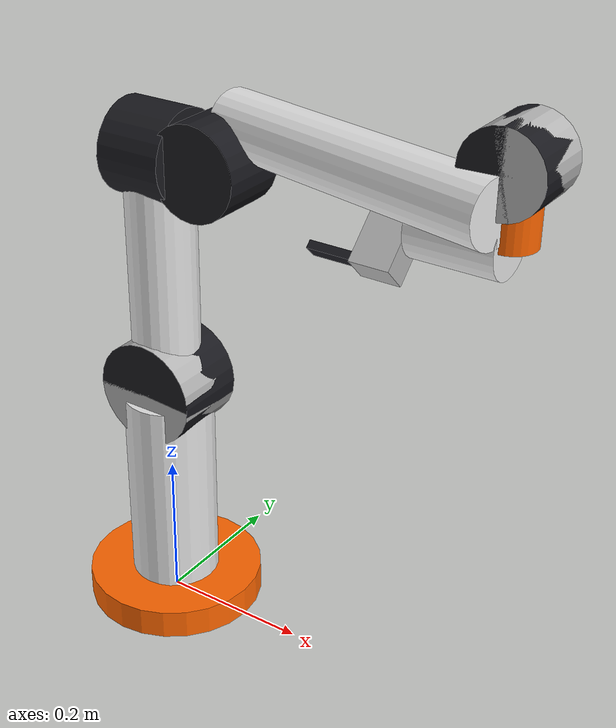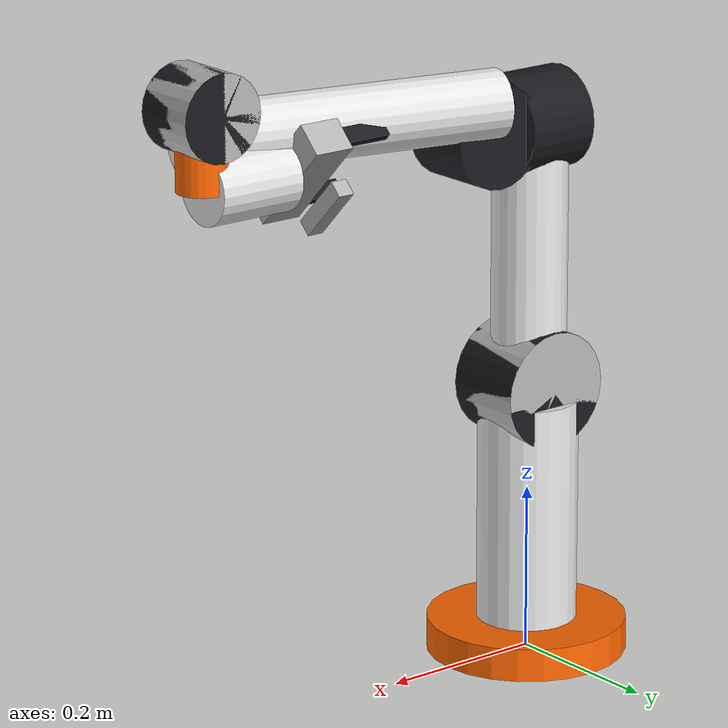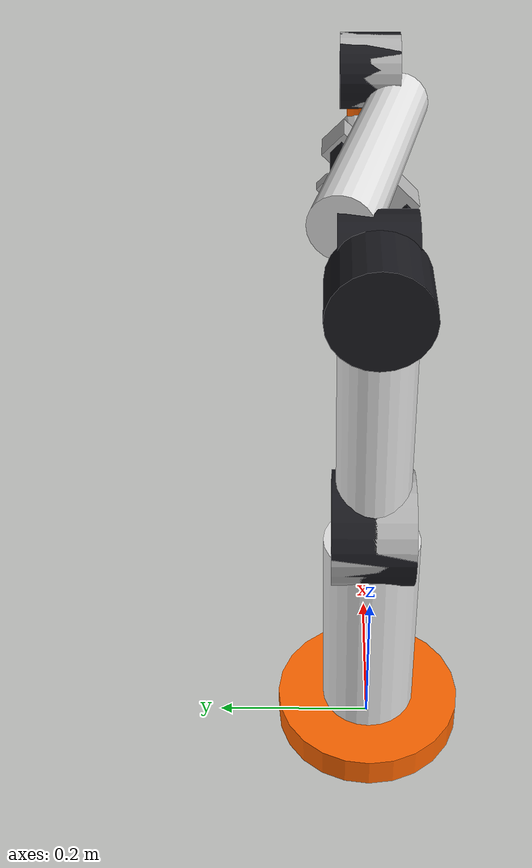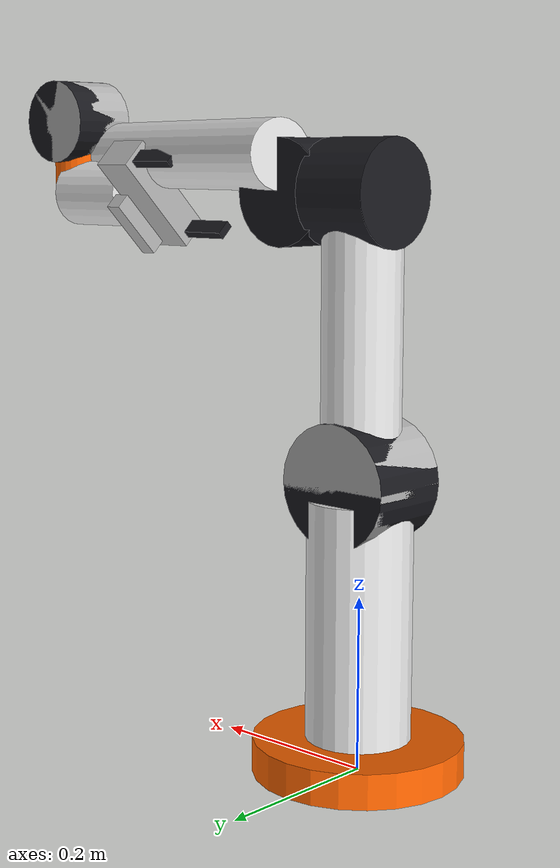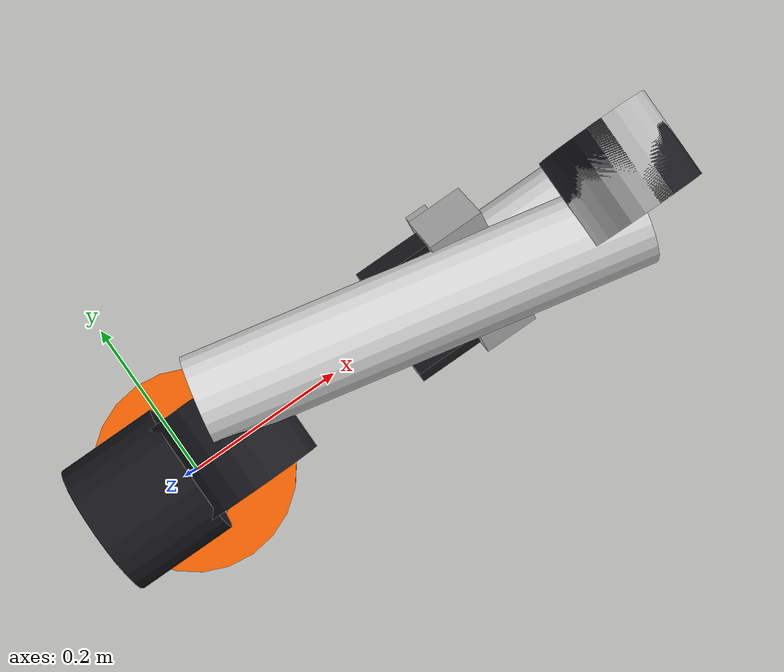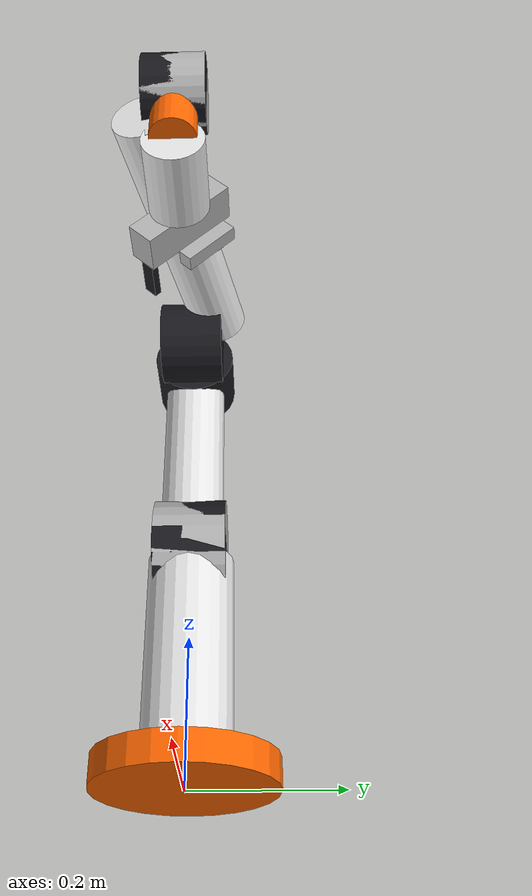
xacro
<?xml version="1.0"?>
<robot name="seven_dof_arm" xmlns:xacro="http://www.ros.org/wiki/xacro">
  <xacro:arg name="controllers_yaml" default=""/>

  <!-- High-end Commercial Robotics Palette -->
  <material name="industrial_black"><color rgba="0.1 0.1 0.12 1.0"/></material>
  <material name="matte_white"><color rgba="0.9 0.9 0.9 1.0"/></material>
  <material name="anodized_aluminum"><color rgba="0.7 0.7 0.7 1.0"/></material>
  <material name="safety_orange"><color rgba="1.0 0.4 0.0 1.0"/></material>

  <xacro:macro name="cylinder_inertia" params="mass r l">
    <inertial>
      <mass value="${mass}"/>
      <inertia ixx="${mass*(3*r*r + l*l)/12}" ixy="0" ixz="0" iyy="${mass*(3*r*r + l*l)/12}" iyz="0" izz="${mass*r*r/2}"/>
    </inertial>
  </xacro:macro>

  <xacro:macro name="box_inertia" params="mass x y z">
    <inertial>
      <mass value="${mass}"/>
      <inertia ixx="${mass*(y*y + z*z)/12}" ixy="0" ixz="0" iyy="${mass*(x*x + z*z)/12}" iyz="0" izz="${mass*(x*x + y*y)/12}"/>
    </inertial>
  </xacro:macro>

  <xacro:macro name="sphere_inertia" params="mass r">
    <inertial>
      <mass value="${mass}"/>
      <inertia ixx="${2*mass*r*r/5}" ixy="0" ixz="0" iyy="${2*mass*r*r/5}" iyz="0" izz="${2*mass*r*r/5}"/>
    </inertial>
  </xacro:macro>

  <link name="world"/>
  <joint name="world_to_base" type="fixed">
    <parent link="world"/>
    <child link="base_link"/>
    <origin xyz="0 0 0" rpy="0 0 0"/>
  </joint>

  <!-- Base Link: Z=0 to Z=0.333 -->
  <link name="base_link">
    <!-- Pedestal base -->
    <visual><origin xyz="0 0 0.02" rpy="0 0 0"/><geometry><cylinder radius="0.12" length="0.04"/></geometry><material name="safety_orange"/></visual>
    <collision><origin xyz="0 0 0.02" rpy="0 0 0"/><geometry><cylinder radius="0.12" length="0.04"/></geometry></collision>
    <!-- Tower -->
    <visual><origin xyz="0 0 0.1765" rpy="0 0 0"/><geometry><cylinder radius="0.06" length="0.273"/></geometry><material name="matte_white"/></visual>
    <collision><origin xyz="0 0 0.1765" rpy="0 0 0"/><geometry><cylinder radius="0.06" length="0.273"/></geometry></collision>
    <xacro:cylinder_inertia mass="4.0" r="0.06" l="0.333"/>
  </link>

  <joint name="joint_1" type="revolute">
    <origin rpy="0 0 0" xyz="0 0 0.333" />
    <parent link="base_link" />
    <child link="link_1" />
    <axis xyz="0 0 1" />
    <limit effort="87" lower="-2.8973" upper="2.8973" velocity="2.1750" />
    <dynamics damping="1.0" friction="0.5"/>
  </joint>

  <!-- Link 1: Motor joint -->
  <link name="link_1">
    <visual><origin xyz="0 0 0" rpy="1.5708 0 0"/><geometry><cylinder radius="0.07" length="0.1"/></geometry><material name="industrial_black"/></visual>
    <collision><origin xyz="0 0 0" rpy="1.5708 0 0"/><geometry><cylinder radius="0.07" length="0.1"/></geometry></collision>
    <xacro:sphere_inertia mass="2.0" r="0.07"/>
  </link>

  <joint name="joint_2" type="revolute">
    <origin rpy="-1.57079632679 0 0" xyz="0 0 0" />
    <parent link="link_1" />
    <child link="link_2" />
    <axis xyz="0 0 1" />
    <limit effort="87" lower="-1.7628" upper="1.7628" velocity="2.1750" />
    <dynamics damping="1.0" friction="0.5"/>
  </joint>

  <!-- Link 2: Arm reaching to -0.316 in Y -->
  <link name="link_2">
    <!-- Motor housing -->
    <visual><origin xyz="0 0 0" rpy="0 0 0"/><geometry><cylinder radius="0.07" length="0.1"/></geometry><material name="anodized_aluminum"/></visual>
    <!-- Arm segment -->
    <visual><origin xyz="0 -0.158 0" rpy="1.5708 0 0"/><geometry><cylinder radius="0.045" length="0.28"/></geometry><material name="matte_white"/></visual>
    <collision><origin xyz="0 -0.158 0" rpy="1.5708 0 0"/><geometry><cylinder radius="0.045" length="0.316"/></geometry></collision>
    <xacro:cylinder_inertia mass="2.5" r="0.045" l="0.316"/>
  </link>

  <joint name="joint_3" type="revolute">
    <origin rpy="1.57079632679 0 0" xyz="0 -0.316 0" />
    <parent link="link_2" />
    <child link="link_3" />
    <axis xyz="0 0 1" />
    <limit effort="87" lower="-2.8973" upper="2.8973" velocity="2.1750" />
    <dynamics damping="1.0" friction="0.5"/>
  </joint>

  <!-- Link 3: Offset to 0.0825 X -->
  <link name="link_3">
    <visual><origin xyz="0 0 0" rpy="0 1.5708 0"/><geometry><cylinder radius="0.06" length="0.09"/></geometry><material name="industrial_black"/></visual>
    <visual><origin xyz="0.04125 0 0" rpy="0 1.5708 0"/><geometry><cylinder radius="0.045" length="0.0825"/></geometry><material name="anodized_aluminum"/></visual>
    <collision><origin xyz="0.04125 0 0" rpy="0 1.5708 0"/><geometry><cylinder radius="0.045" length="0.0825"/></geometry></collision>
    <xacro:sphere_inertia mass="1.5" r="0.06"/>
  </link>

  <joint name="joint_4" type="revolute">
    <origin rpy="1.57079632679 0 0" xyz="0.0825 0 0" />
    <parent link="link_3" />
    <child link="link_4" />
    <axis xyz="0 0 1" />
    <limit effort="87" lower="-3.0718" upper="-0.0698" velocity="2.1750" />
    <dynamics damping="1.0" friction="0.5"/>
  </joint>

  <!-- Link 4: Arm reaching to X=-0.0825, Y=0.384 -->
  <link name="link_4">
    <!-- Motor housing -->
    <visual><origin xyz="0 0 0" rpy="0 0 0"/><geometry><cylinder radius="0.06" length="0.09"/></geometry><material name="industrial_black"/></visual>
    <!-- Arm segment -->
    <visual><origin xyz="-0.04125 0.192 0" rpy="1.78 0 0"/><geometry><cylinder radius="0.04" length="0.39"/></geometry><material name="matte_white"/></visual>
    <collision><origin xyz="-0.04125 0.192 0" rpy="1.78 0 0"/><geometry><cylinder radius="0.04" length="0.39"/></geometry></collision>
    <xacro:cylinder_inertia mass="2.0" r="0.04" l="0.384"/>
  </link>

  <joint name="joint_5" type="revolute">
    <origin rpy="-1.57079632679 0 0" xyz="-0.0825 0.384 0" />
    <parent link="link_4" />
    <child link="link_5" />
    <axis xyz="0 0 1" />
    <limit effort="12" lower="-2.8973" upper="2.8973" velocity="2.6100" />
    <dynamics damping="1.0" friction="0.5"/>
  </joint>

  <!-- Link 5: Motor joint -->
  <link name="link_5">
    <visual><origin xyz="0 0 0" rpy="1.5708 0 0"/><geometry><cylinder radius="0.05" length="0.08"/></geometry><material name="anodized_aluminum"/></visual>
    <collision><origin xyz="0 0 0" rpy="1.5708 0 0"/><geometry><cylinder radius="0.05" length="0.08"/></geometry></collision>
    <xacro:sphere_inertia mass="1.2" r="0.05"/>
  </link>

  <joint name="joint_6" type="revolute">
    <origin rpy="1.57079632679 0 0" xyz="0 0 0" />
    <parent link="link_5" />
    <child link="link_6" />
    <axis xyz="0 0 1" />
    <limit effort="12" lower="-0.0175" upper="3.7525" velocity="2.6100" />
    <dynamics damping="1.0" friction="0.5"/>
  </joint>

  <!-- Link 6: Offset to X=0.088 -->
  <link name="link_6">
    <visual><origin xyz="0 0 0" rpy="0 0 0"/><geometry><cylinder radius="0.05" length="0.08"/></geometry><material name="industrial_black"/></visual>
    <visual><origin xyz="0.044 0 0" rpy="0 1.5708 0"/><geometry><cylinder radius="0.03" length="0.088"/></geometry><material name="safety_orange"/></visual>
    <collision><origin xyz="0.044 0 0" rpy="0 1.5708 0"/><geometry><cylinder radius="0.03" length="0.088"/></geometry></collision>
    <xacro:cylinder_inertia mass="0.8" r="0.03" l="0.088"/>
  </link>

  <joint name="joint_7" type="revolute">
    <origin rpy="1.57079632679 0 0" xyz="0.088 0 0" />
    <parent link="link_6" />
    <child link="link_7" />
    <axis xyz="0 0 1" />
    <limit effort="12" lower="-2.8973" upper="2.8973" velocity="2.6100" />
    <dynamics damping="1.0" friction="0.5"/>
  </joint>

  <!-- Link 7: Flange adapter -->
  <link name="link_7">
    <visual><origin xyz="0 0 0.0535" rpy="0 0 0"/><geometry><cylinder radius="0.04" length="0.107"/></geometry><material name="matte_white"/></visual>
    <collision><origin xyz="0 0 0.0535" rpy="0 0 0"/><geometry><cylinder radius="0.04" length="0.107"/></geometry></collision>
    <xacro:cylinder_inertia mass="0.5" r="0.04" l="0.107"/>
  </link>

  <joint name="flange_joint" type="fixed">
    <origin rpy="0 0 0" xyz="0 0 0.107" />
    <parent link="link_7" />
    <child link="flange" />
  </joint>
  <link name="flange" />

  <!-- Gripper -->
  <joint name="gripper_base_joint" type="fixed">
    <parent link="flange" />
    <child link="gripper_base" />
    <origin rpy="0 0 -0.785398163397" xyz="0 0 0" />
  </joint>

  <link name="gripper_base">
    <visual><origin xyz="0 0 0.025" rpy="0 0 0"/><geometry><box size="0.04 0.14 0.05"/></geometry><material name="anodized_aluminum"/></visual>
    <collision><origin xyz="0 0 0.025" rpy="0 0 0"/><geometry><box size="0.04 0.14 0.05"/></geometry></collision>
    <xacro:box_inertia mass="0.4" x="0.04" y="0.14" z="0.05"/>
  </link>

  <joint name="gripper_left_joint" type="prismatic">
    <parent link="gripper_base" />
    <child link="gripper_left_finger" />
    <origin rpy="0 0 0" xyz="0 0.06 0.05" />
    <axis xyz="0 -1 0" />
    <limit effort="20" lower="0.0" upper="0.05" velocity="0.2" />
    <dynamics damping="1.0" friction="0.5"/>
  </joint>

  <link name="gripper_left_finger">
    <visual><origin xyz="0 0 0.03" rpy="0 0 0"/><geometry><box size="0.02 0.01 0.06"/></geometry><material name="industrial_black"/></visual>
    <collision><origin xyz="0 0 0.03" rpy="0 0 0"/><geometry><box size="0.02 0.01 0.06"/></geometry></collision>
    <xacro:box_inertia mass="0.5" x="0.1" y="0.1" z="0.1"/>
  </link>

  <joint name="gripper_right_joint" type="prismatic">
    <parent link="gripper_base" />
    <child link="gripper_right_finger" />
    <origin rpy="0 0 0" xyz="0 -0.06 0.05" />
    <axis xyz="0 1 0" />
    <limit effort="20" lower="0.0" upper="0.05" velocity="0.2" />
    <dynamics damping="1.0" friction="0.5"/>
  </joint>

  <link name="gripper_right_finger">
    <visual><origin xyz="0 0 0.03" rpy="0 0 0"/><geometry><box size="0.02 0.01 0.06"/></geometry><material name="industrial_black"/></visual>
    <collision><origin xyz="0 0 0.03" rpy="0 0 0"/><geometry><box size="0.02 0.01 0.06"/></geometry></collision>
    <xacro:box_inertia mass="0.5" x="0.1" y="0.1" z="0.1"/>
  </link>

  <joint name="tcp_joint" type="fixed">
    <parent link="gripper_base"/>
    <child link="tcp"/>
    <origin xyz="0 0 0.11" rpy="0 0 0"/>
  </joint>
  <link name="tcp"/>

  <!-- Camera: centered on gripper Z axis so joint_7 rotation does not
       laterally displace the camera. rpy pitch -90 deg points camera down. -->
  <joint name="camera_joint" type="fixed">
    <parent link="gripper_base"/>
    <child link="camera_link"/>
    <origin xyz="0.05 0 0.035" rpy="0 -1.5708 0"/>
  </joint>

  <link name="camera_link">
    <visual><origin xyz="0 0 0" rpy="0 0 0"/><geometry><box size="0.02 0.08 0.02"/></geometry><material name="anodized_aluminum"/></visual>
    <xacro:box_inertia mass="0.5" x="0.1" y="0.1" z="0.1"/>
  </link>

  <joint name="camera_optical_joint" type="fixed">
    <parent link="camera_link"/>
    <child link="camera_link_optical"/>
    <origin xyz="0 0 0" rpy="-1.57079632679 0 -1.57079632679"/>
  </joint>
  <link name="camera_link_optical"/>

  <!-- Import ROS 2 Control configuration -->
  <xacro:include filename="$(find seven_dof_arm_description)/urdf/seven_dof_arm.ros2_control.xacro" />

  <!-- Import Gazebo Harmonic configurations -->
  <xacro:include filename="$(find seven_dof_arm_description)/urdf/seven_dof_arm.gazebo.xacro" />

</robot>
